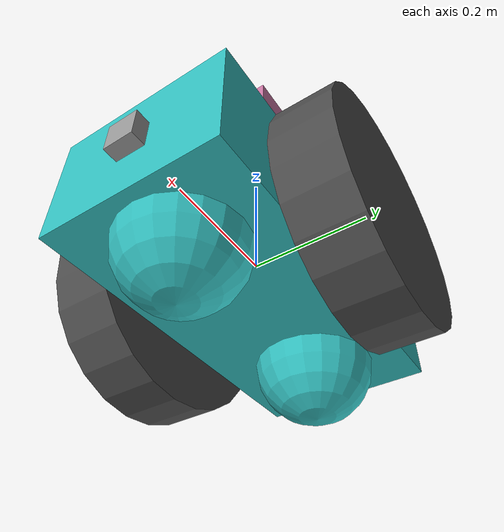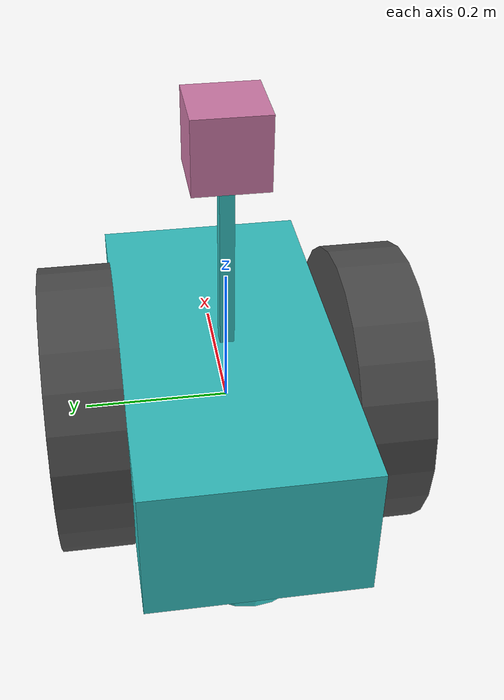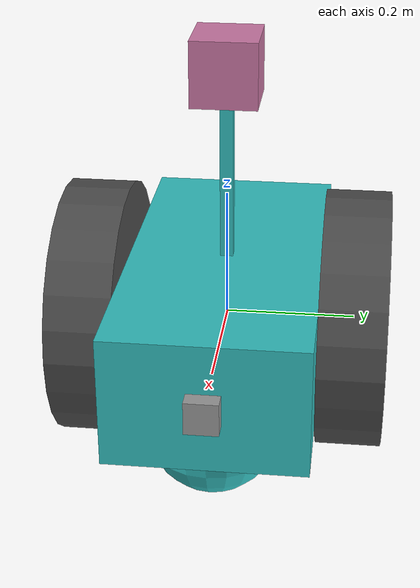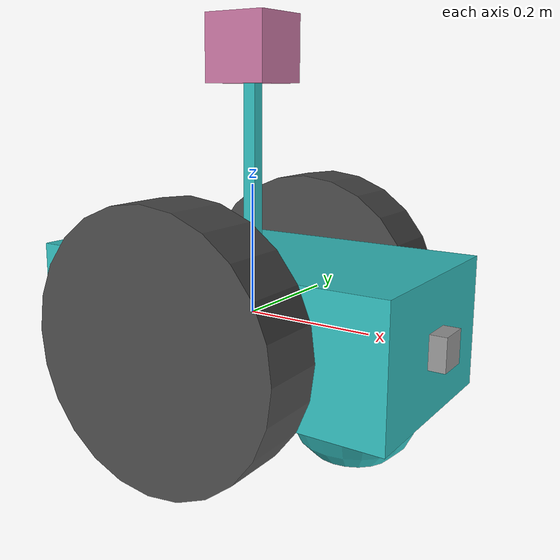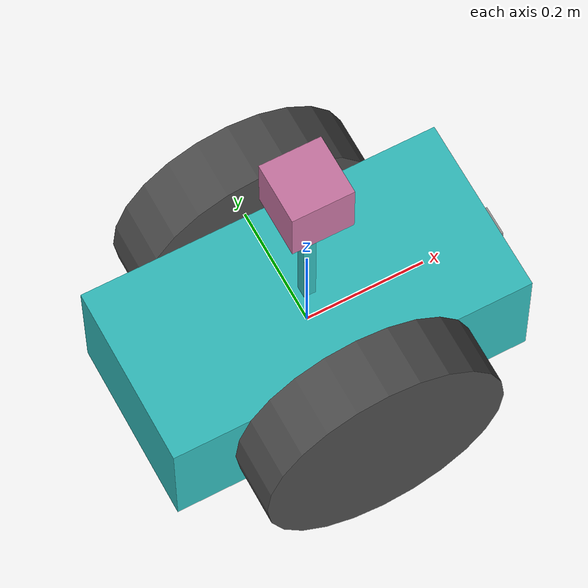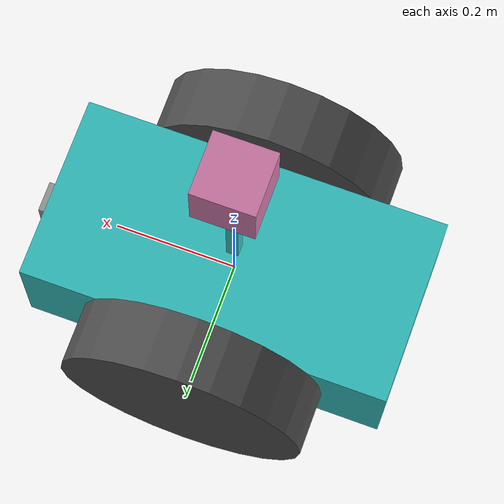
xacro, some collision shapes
<?xml version='1.0'?>

<robot name="my_robot" xmlns:xacro="http://www.ros.org/wiki/xacro">
<xacro:include filename="$(find my_robot)/urdf/my_robot.gazebo" />
  <link name="robot_footprint"></link>

  <joint name="robot_footprint_joint" type="fixed">
    <origin xyz="0 0 0" rpy="0 0 0" />
    <parent link="robot_footprint"/>
    <child link="chassis" />
  </joint>

  <link name='chassis'>
    <pose>0 0 0 0 0 0</pose>

    <inertial>
      <mass value="15.0"/>
      <origin xyz="0.0 0 0" rpy=" 0 0 0"/>
      <inertia
          ixx="0.1" ixy="0" ixz="0"
          iyy="0.1" iyz="0"
          izz="0.1"
      />
    </inertial>

    <collision name='collision'>
      <origin xyz="0 0 0" rpy=" 0 0 0"/>
      <geometry>
        <box size=".6 .3 .2"/>
      </geometry>
    </collision>

    <visual name='chassis_visual'>
      <origin xyz="0 0 0" rpy=" 0 0 0"/>
      <geometry>
        <box size=".6 .3 .2"/>
      </geometry>
    </visual>

    <collision name='back_caster_collision'>
      <origin xyz="-0.18 0 -0.1" rpy=" 0 0 0"/>
      <geometry>
        <sphere radius="0.099"/>
      </geometry>
    </collision>

    <visual name='back_caster_visual'>
      <origin xyz="-0.18 0 -0.1" rpy=" 0 0 0"/>
      <geometry>
        <sphere radius="0.1"/>
      </geometry>
    </visual>

    <collision name='front_caster_collision'>
      <origin xyz="0.18 0 -0.1" rpy=" 0 0 0"/>
      <geometry>
        <sphere radius="0.099"/>
      </geometry>
    </collision>

    <visual name='front_caster_visual'>
      <origin xyz="0.18 0 -0.1" rpy=" 0 0 0"/>
      <geometry>
        <sphere radius="0.1"/>
      </geometry>
    </visual>

    <collision name='hokuyo_mount_collision'>
		<origin xyz="0 0 0.25" rpy="0 0 0" />
		<geometry>
			<box size="0.02 0.02 0.3" />
		</geometry>
    </collision>

	<visual name='hokuyo_mount_visual'>
		<origin xyz="0 0 0.25" rpy="0 0 0" />
		<geometry>
			<box size="0.02 0.02 0.3" />
		</geometry>
	</visual>

  </link>

<link name="left_wheel">
	<inertial>
	      <mass value="5"/>
	      <origin xyz="0.0 0 0" rpy=" 0 1.5707 1.5707"/>
	      <inertia
			  ixx="0.1" ixy="0" ixz="0"
			  iyy="0.1" iyz="0"
			  izz="0.1"
	     		/>
        </inertial>

	<visual name="left_wheel_visual">
		<origin xyz="0 0 0" rpy="0 1.5707 1.5707"/>
		<geometry>
			<cylinder length="0.1" radius="0.2"/>
		</geometry>
		<gazebo reference="left_wheel">
		<color>Gazebo/Black</color>
		</gazebo>
	</visual>
	<collision name="left_wheel_collision">
		<origin xyz="0 0 0" rpy="0 1.5707 1.5707"/>
		<geometry>
			<cylinder length="0.1" radius="0.2"/>
		</geometry>
	</collision>
</link>

<link name="right_wheel">
	<inertial>
	      <mass value="5"/>
	      <origin xyz="0.0 0 0" rpy=" 0 1.5707 1.5707"/>
	      <inertia
			  ixx="0.1" ixy="0" ixz="0"
			  iyy="0.1" iyz="0"
			  izz="0.1"
	     		/>
        </inertial>

	<visual name="right_wheel_visual">
		<origin xyz="0 0 0" rpy="0 1.5707 1.5707"/>
		<geometry>
			<cylinder length="0.1" radius="0.2"/>
		</geometry>
	</visual>

	<collision name="right_wheel_collision">
		<origin xyz="0 0 0" rpy="0 1.5707 1.5707"/>
		<geometry>
			<cylinder length="0.1" radius="0.2"/>
		</geometry>
	</collision>

</link>

<joint type="continuous" name="left_wheel_hinge">
    <origin xyz="0 0.2 0" rpy="0 0 0"/>
    <child link="left_wheel"/>
    <parent link="chassis"/>
    <axis xyz="0 1 0" rpy="0 0 0"/>
    <limit effort="10000" velocity="1000"/>
    <dynamics damping="1.0" friction="1.0"/>
</joint>

<joint type="continuous" name="right_wheel_hinge">
    <origin xyz="0 -0.2 0" rpy="0 0 0"/>
    <child link="right_wheel"/>
    <parent link="chassis"/>
    <axis xyz="0 1 0" rpy="0 0 0"/>
    <limit effort="10000" velocity="1000"/>
    <dynamics damping="1.0" friction="1.0"/>
</joint>

<link name="camera">
	<visual name="camera_visual">
		<origin xyz="0 0 0" rpy="0 0 0"/>
		<geometry>
			<box size="0.05 0.05 0.05"/>
		</geometry>
	</visual>

	<collision name="camera_collision">
		<origin xyz="0 0 0" rpy="0 0 0"/>
		<geometry>
			<box size="0.05 0.05 0.05"/>
		</geometry>
	</collision>

	<inertial>
		<mass value="0.1"/>
		<origin xyz="0.05 0.05 0.05" rpy="0 0 0"/>
		<inertia
			ixx="1e-6" ixy="0" ixz="0" iyy="1e-6" iyz="0" izz="1e-6"
		/>
	</inertial>

</link>

<joint type="fixed" name="camera_joint">
	<origin xyz="0.3 0 0" rpy="0 0 0"/>
	<parent link="chassis"/>
	<child link="camera"/>
	<axis xyz="0 1 0" rpy="0 0 0"/>
</joint>

<link name="camera_link_optical">
</link>

<link name="hokuyo">
	<visual name="hokuyo_visual">
		<origin xyz="0 0 0" rpy="0 0 0"/>
		<geometry>
			<mesh filename="package://my_robot/meshes/hokuyo.dae"/>
		</geometry>
	</visual>

	<collision name="hokuyo__collision">
		<geometry>
			<box size="0.1 0.1 0.1"/>
		</geometry>
	</collision>

	<inertial>
		<mass value="1e-5"/>
		<inertia
		ixx="1e-6" ixy="0" ixz="0" iyy="1e-6" iyz="0" izz="1e-6"
		/>
	</inertial>
</link>

<joint type="fixed" name="hokuyo_joint">
	<parent link="chassis"/>
	<child link="hokuyo"/>
	<origin xyz="0 0 0.4" rpy="0 0 0"/>
	<axis xyz="0 1 0"/>
</joint>

<joint name="camera_optical_joint" type="fixed">
    <origin xyz="0 0 0" rpy="-1.5707 0 -1.5707"/>
    <parent link="camera"/>
    <child link="camera_link_optical"/>
  </joint>

</robot>
